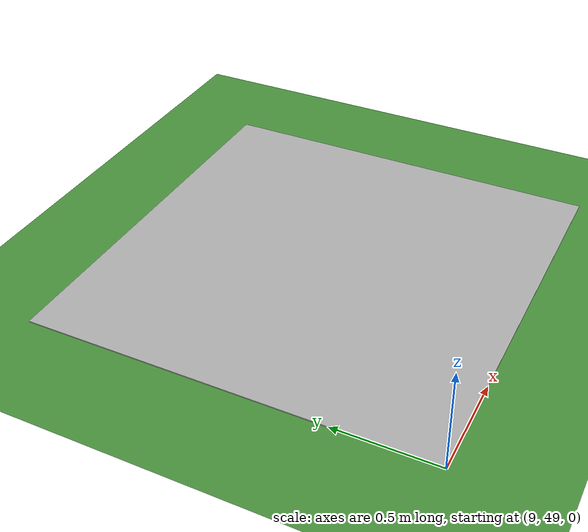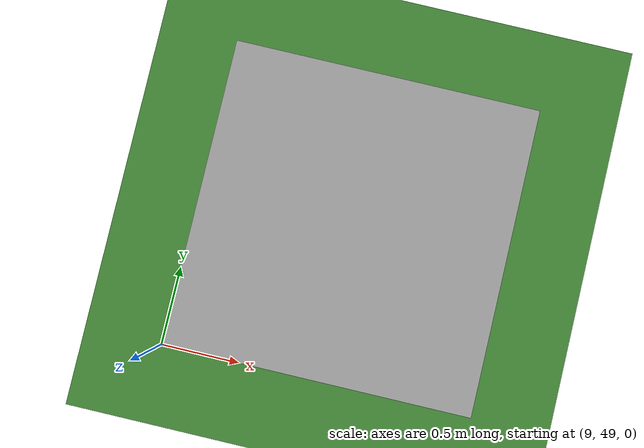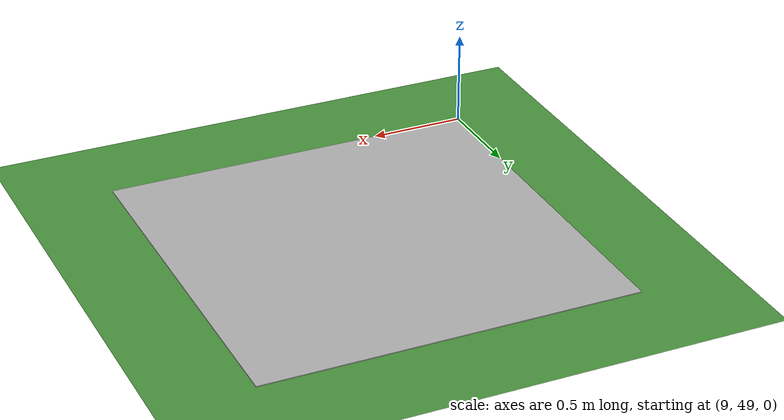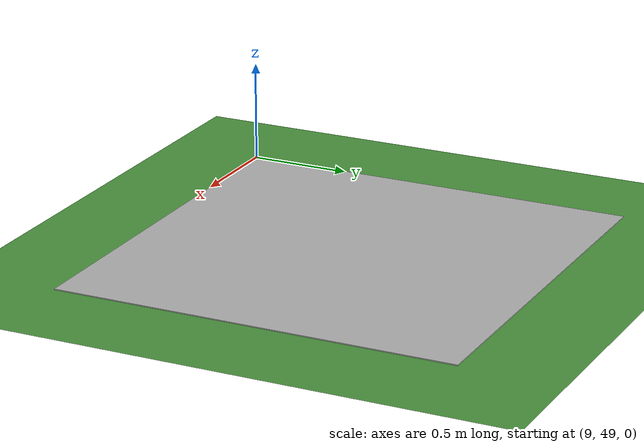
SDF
<?xml version="1.0" ?>
<sdf version="1.6">
  <world name="default">
    <gui>
      <camera name="user_camera">
        <pose>-5 0 1 0 0.2 0</pose>
      </camera>
    </gui>
    <scene>
      <grid>0</grid>
      <origin_visual>0</origin_visual>
      <ambient>0.592 0.624 0.635 1</ambient>
      <sky>
        <clouds>
          <speed>12</speed>
        </clouds>
      </sky>
      <background>0.35 0.35 0.35 1</background>
      <shadows>1</shadows>
    </scene>
    <physics name='default_physics' default='0' type='ode'>
      <gravity>0 0 -9.8066</gravity>
      <ode>
        <solver>
          <type>quick</type>
          <iters>10</iters>
          <sor>1.3</sor>
          <use_dynamic_moi_rescaling>0</use_dynamic_moi_rescaling>
        </solver>
        <constraints>
          <cfm>0</cfm>
          <erp>0.2</erp>
          <contact_max_correcting_vel>100</contact_max_correcting_vel>
          <contact_surface_layer>0.001</contact_surface_layer>
        </constraints>
      </ode>
      <max_step_size>0.002</max_step_size>
      <real_time_factor>1</real_time_factor>
      <real_time_update_rate>500</real_time_update_rate>
      <magnetic_field>6.0e-6 2.3e-5 -4.2e-5</magnetic_field>
    </physics>
    <gravity>0 0 -9.8</gravity>
    <include>
      <uri>model://sun</uri>
    </include>

    <model name="ground_plane">
      <static>true</static>
      <link name="link">
        <collision name="collision">
          <geometry>
            <plane>
              <normal>0 0 2</normal>
              <size>5000 5000</size>
            </plane>
          </geometry>

            <friction>
              <ode>
                <mu>100</mu>
                <mu2>50</mu2>
              </ode>
            </friction>

        </collision>

        <visual name="grass">
          <pose>0 0 -0.1 0 0 0</pose>
          <cast_shadows>false</cast_shadows>
          <geometry>
            <plane>
              <normal>0 0 2</normal>
              <size>3000 3000</size>
            </plane>
          </geometry>
          <material>
            <script>
              <uri>file://media/materials/scripts/gazebo.material</uri>
              <name>Gazebo/Grass</name>
            </script>
          </material>
        </visual>

      </link>
    </model>

    <model name="h">
      <link name='link'>
         <pose>10 50 0 0 0 0</pose>
         <inertial>
           <mass>3.390</mass>
           <inertia>
             <ixx>0.58</ixx>
             <ixy>0</ixy>
             <ixz>0</ixz>
             <iyy>0.58</iyy>
             <iyz>0</iyz>
             <izz>0.19</izz>
           </inertia>
         </inertial>
         <collision name='collision'>
           <geometry>
                   <box>
                     <size>.496 .496 .005</size>
                   </box>
           </geometry>
         </collision>

         <visual name='visual'>
           <geometry>
                   <box>
                     <size>2 2 .005</size>
                   </box>
           </geometry>

           <material>
             <script>
               <uri>model://H/materials/scripts</uri>
               <uri>model://H/materials/textures</uri>
               <name>Mark/Diffuse2</name>
             </script>
           </material>
         </visual>
      </link>
    </model>

  </world>
</sdf>
